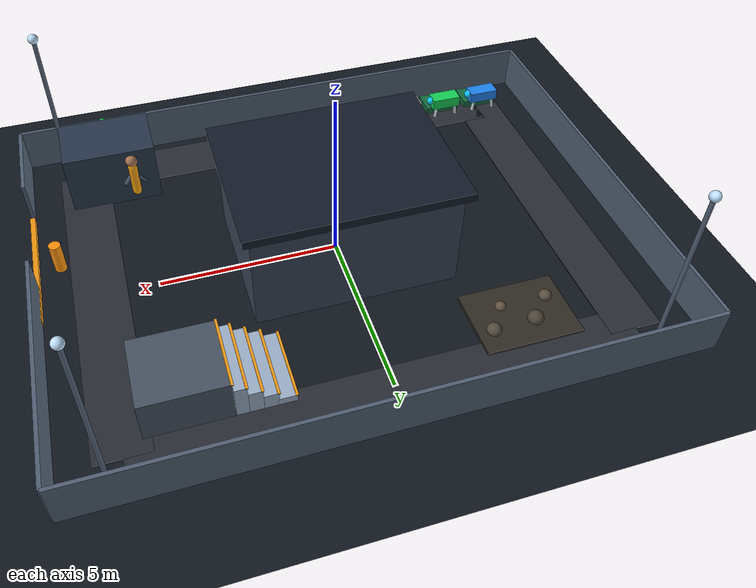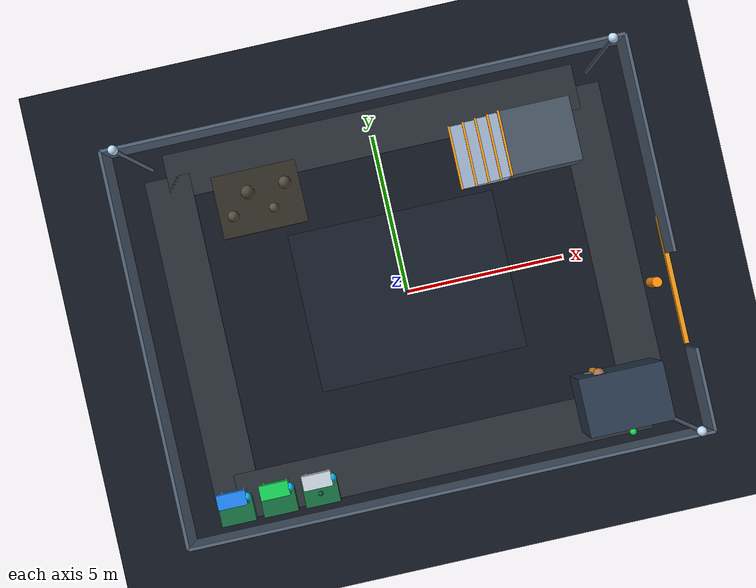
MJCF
<mujoco model="quadruped_night_security_v2">
  <compiler angle="degree"/>
  <option timestep="0.01" gravity="0 0 -9.81"/>
  <visual>
    <global azimuth="128" elevation="-31" offwidth="960" offheight="540"/>
    <headlight ambient="0.20 0.22 0.28" diffuse="0.70 0.74 0.82" specular="0.30 0.30 0.35"/>
    <rgba haze="0.02 0.04 0.08 1"/>
  </visual>
  <asset>
    <texture name="ground_tex" type="2d" builtin="checker" rgb1="0.055 0.07 0.10" rgb2="0.085 0.11 0.15" width="256" height="256"/>
    <material name="ground" texture="ground_tex" texrepeat="14 10" reflectance="0.08"/>
    <material name="building" rgba="0.22 0.27 0.34 1"/>
    <material name="roof" rgba="0.08 0.11 0.16 1"/>
    <material name="glass" rgba="0.08 0.45 0.62 0.78" emission="0.12"/>
    <material name="pavement" rgba="0.16 0.18 0.21 1"/>
    <material name="boundary" rgba="0.95 0.60 0.08 1" emission="0.10"/>
    <material name="steel" rgba="0.32 0.38 0.46 1"/>
    <material name="quad" rgba="0.78 0.82 0.86 1"/>
    <material name="quad_blue" rgba="0.12 0.52 0.95 1"/>
    <material name="quad_green" rgba="0.08 0.82 0.34 1"/>
    <material name="step" rgba="0.62 0.70 0.80 1"/>
    <material name="sensor" rgba="0.05 0.75 0.95 1" emission="0.45"/>
    <material name="dock" rgba="0.08 0.42 0.24 1"/>
    <material name="vest" rgba="0.95 0.62 0.05 1"/>
  </asset>
  <worldbody>
    <light pos="0 -2 12" dir="0 0 -1" diffuse="0.65 0.70 0.82"/>
    <light pos="-7 -6 5" dir="0.4 0.4 -1" diffuse="0.35 0.45 0.62"/>
    <light pos="7 5 5" dir="-0.4 -0.4 -1" diffuse="0.35 0.45 0.62"/>
    <geom type="plane" size="14 10 0.1" material="ground"/>
    <camera name="overview" pos="-15 -16 11" xyaxes="0.73 -0.68 0 0.38 0.41 0.83"/>
    <camera name="gate" pos="12 -9 5" xyaxes="0.70 0.71 0 -0.30 0.30 0.91"/>
    <camera name="terrain" pos="-8 8 4.5" xyaxes="-0.70 -0.71 0 0.32 -0.31 0.89"/>
    <camera name="dock" pos="-10 -10 4.5" xyaxes="0.72 -0.70 0 0.28 0.29 0.92"/>
    <camera name="stair_close" pos="3.6 7.8 5.0" xyaxes="-0.998783 0.049323 0 -0.036270 -0.734458 0.677684"/>
    <camera name="north_perimeter" pos="-11.5 9.5 6.8" xyaxes="-0.64 -0.77 0 0.36 -0.30 0.88"/>

    <!-- Warehouse and guard station -->
    <geom type="box" pos="0 0 1.5" size="2.8 2.1 1.5" material="building"/>
    <geom type="box" pos="0 0 3.08" size="3.0 2.3 0.12" material="roof"/>
    <geom type="box" pos="-1.6 -2.12 1.5" size="0.75 0.03 0.78" material="glass" contype="0" conaffinity="0"/>
    <geom type="box" pos="0 -2.12 1.5" size="0.55 0.03 0.78" material="glass" contype="0" conaffinity="0"/>
    <geom type="box" pos="1.6 -2.12 1.5" size="0.75 0.03 0.78" material="glass" contype="0" conaffinity="0"/>
    <geom type="box" pos="5.7 -4.6 0.9" size="1.3 0.9 0.9" rgba="0.16 0.22 0.30 1"/>
    <geom type="box" pos="5.7 -5.51 0.95" size="0.80 0.03 0.45" material="glass" contype="0" conaffinity="0"/>
    <geom type="box" pos="4.65 -4.62 0.95" size="0.03 0.45 0.45" material="glass" contype="0" conaffinity="0"/>
    <geom name="soc_indicator" type="sphere" pos="5.7 -5.60 1.65" size="0.11" rgba="0.08 0.85 0.30 1" contype="0" conaffinity="0"/>

    <!-- Human responder -->
    <body name="human_responder" pos="5.1 -3.7 0">
      <geom type="capsule" fromto="0 0 0.35 0 0 1.25" size="0.13" material="vest"/>
      <geom type="sphere" pos="0 0 1.48" size="0.18" rgba="0.64 0.45 0.32 1"/>
      <geom type="capsule" fromto="0 0 1.05 -0.28 0 0.68" size="0.055" material="steel"/>
      <geom type="capsule" fromto="0 0 1.05 0.28 0 0.68" size="0.055" material="steel"/>
    </body>

    <!-- Perimeter fence and an intentionally open gate anomaly. No abstract route lines are shown. -->
    <geom type="box" pos="0 6.2 0.65" size="8.2 0.05 0.65" material="steel"/>
    <geom type="box" pos="0 -6.2 0.65" size="8.2 0.05 0.65" material="steel"/>
    <geom type="box" pos="-8.2 0 0.65" size="0.05 6.2 0.65" material="steel"/>
    <geom type="box" pos="8.2 2.8 0.65" size="0.05 3.4 0.65" material="steel"/>
    <geom type="box" pos="8.2 -4.9 0.65" size="0.05 1.3 0.65" material="steel"/>
    <geom type="box" pos="8.2 -1.45 0.10" size="0.07 2.05 0.10" material="boundary" contype="0" conaffinity="0"/>
    <geom name="event_beacon" type="cylinder" pos="7.55 -1.40 0.45" size="0.16 0.45" rgba="1.0 0.58 0.05 1" contype="0" conaffinity="0"/>

    <geom type="box" pos="0 -5.15 0.015" size="6.6 0.72 0.015" material="pavement"/>
    <geom type="box" pos="6.6 0 0.015" size="0.72 5.15 0.015" material="pavement"/>
    <geom type="box" pos="0 5.15 0.015" size="6.6 0.72 0.015" material="pavement"/>
    <geom type="box" pos="-6.6 0 0.015" size="0.72 5.15 0.015" material="pavement"/>

    <!-- Raised platform, stairs, and rough ground -->
    <geom name="loading_platform" type="box" pos="5.0 3.75 0.62" size="1.10 1.0 0.62" rgba="0.28 0.33 0.39 1"/>
    <geom name="security_step_1" type="box" pos="2.62 3.75 0.12" size="0.24 1.0 0.12" material="step"/>
    <geom name="security_step_2" type="box" pos="3.02 3.75 0.24" size="0.20 1.0 0.24" material="step"/>
    <geom name="security_step_3" type="box" pos="3.38 3.75 0.36" size="0.18 1.0 0.36" material="step"/>
    <geom name="security_step_4" type="box" pos="3.72 3.75 0.49" size="0.16 1.0 0.49" material="step"/>
    <geom type="box" pos="2.39 3.75 0.252" size="0.035 1.02 0.012" material="boundary" contype="0" conaffinity="0"/>
    <geom type="box" pos="2.83 3.75 0.492" size="0.035 1.02 0.012" material="boundary" contype="0" conaffinity="0"/>
    <geom type="box" pos="3.21 3.75 0.732" size="0.035 1.02 0.012" material="boundary" contype="0" conaffinity="0"/>
    <geom type="box" pos="3.57 3.75 0.992" size="0.035 1.02 0.012" material="boundary" contype="0" conaffinity="0"/>
    <geom type="box" pos="3.89 3.75 1.252" size="0.035 1.02 0.012" material="boundary" contype="0" conaffinity="0"/>
    <light pos="4.0 1.8 6.0" dir="-0.1 0.35 -1" diffuse="0.90 0.90 0.82"/>
    <geom type="box" pos="-3.9 3.85 0.05" size="1.35 1.0 0.05" rgba="0.19 0.17 0.14 1"/>
    <geom type="sphere" pos="-4.8 3.5 0.12" size="0.18" rgba="0.34 0.30 0.24 1"/>
    <geom type="sphere" pos="-4.2 4.15 0.14" size="0.22" rgba="0.30 0.27 0.22 1"/>
    <geom type="sphere" pos="-3.5 3.5 0.10" size="0.15" rgba="0.38 0.33 0.25 1"/>
    <geom type="sphere" pos="-3.0 4.2 0.13" size="0.20" rgba="0.32 0.29 0.24 1"/>

    <!-- Charging docks -->
    <geom name="dock_a" type="box" pos="-6.7 -5.55 0.12" size="0.55 0.38 0.12" material="dock"/>
    <geom name="dock_b" type="box" pos="-5.35 -5.55 0.12" size="0.55 0.38 0.12" material="dock"/>
    <geom name="dock_c" type="box" pos="-4.0 -5.55 0.12" size="0.55 0.38 0.12" material="dock"/>
    <geom name="dock_c_light" type="sphere" pos="-4.0 -5.55 0.36" size="0.08" rgba="0.08 0.35 0.18 1" contype="0" conaffinity="0"/>

    <body pos="-7 5.5 0"><geom type="cylinder" size="0.06 2.4" pos="0 0 2.4" material="steel"/><geom type="sphere" size="0.14" pos="0 0 4.8" rgba="0.75 0.88 1 1"/></body>
    <body pos="7 5.5 0"><geom type="cylinder" size="0.06 2.4" pos="0 0 2.4" material="steel"/><geom type="sphere" size="0.14" pos="0 0 4.8" rgba="0.75 0.88 1 1"/></body>
    <body pos="7 -5.5 0"><geom type="cylinder" size="0.06 2.4" pos="0 0 2.4" material="steel"/><geom type="sphere" size="0.14" pos="0 0 4.8" rgba="0.75 0.88 1 1"/></body>

    <!-- Three operations-focused quadruped visual agents -->
    <body name="quadruped_01" mocap="true" pos="-6.7 -5.1 0">
      <geom type="box" pos="0 0 0.55" size="0.46 0.23 0.17" material="quad_blue" contype="0" conaffinity="0"/>
      <geom name="sensor_01" type="sphere" pos="0.48 0 0.60" size="0.13" material="sensor" contype="0" conaffinity="0"/>
      <geom type="capsule" fromto="-0.31 -0.17 0.47 -0.36 -0.18 0.08" size="0.05" material="quad" contype="0" conaffinity="0"/>
      <geom type="capsule" fromto="-0.31 0.17 0.47 -0.36 0.18 0.08" size="0.05" material="quad" contype="0" conaffinity="0"/>
      <geom type="capsule" fromto="0.31 -0.17 0.47 0.36 -0.18 0.08" size="0.05" material="quad" contype="0" conaffinity="0"/>
      <geom type="capsule" fromto="0.31 0.17 0.47 0.36 0.18 0.08" size="0.05" material="quad" contype="0" conaffinity="0"/>
    </body>
    <body name="quadruped_02" mocap="true" pos="-5.35 -5.1 0">
      <geom type="box" pos="0 0 0.55" size="0.46 0.23 0.17" material="quad_green" contype="0" conaffinity="0"/>
      <geom name="sensor_02" type="sphere" pos="0.48 0 0.60" size="0.13" material="sensor" contype="0" conaffinity="0"/>
      <geom type="capsule" fromto="-0.31 -0.17 0.47 -0.36 -0.18 0.08" size="0.05" material="quad" contype="0" conaffinity="0"/>
      <geom type="capsule" fromto="-0.31 0.17 0.47 -0.36 0.18 0.08" size="0.05" material="quad" contype="0" conaffinity="0"/>
      <geom type="capsule" fromto="0.31 -0.17 0.47 0.36 -0.18 0.08" size="0.05" material="quad" contype="0" conaffinity="0"/>
      <geom type="capsule" fromto="0.31 0.17 0.47 0.36 0.18 0.08" size="0.05" material="quad" contype="0" conaffinity="0"/>
    </body>
    <body name="quadruped_03" mocap="true" pos="-4.0 -5.1 0">
      <geom type="box" pos="0 0 0.55" size="0.46 0.23 0.17" material="quad" contype="0" conaffinity="0"/>
      <geom name="sensor_03" type="sphere" pos="0.48 0 0.60" size="0.13" material="sensor" contype="0" conaffinity="0"/>
      <geom type="capsule" fromto="-0.31 -0.17 0.47 -0.36 -0.18 0.08" size="0.05" material="quad" contype="0" conaffinity="0"/>
      <geom type="capsule" fromto="-0.31 0.17 0.47 -0.36 0.18 0.08" size="0.05" material="quad" contype="0" conaffinity="0"/>
      <geom type="capsule" fromto="0.31 -0.17 0.47 0.36 -0.18 0.08" size="0.05" material="quad" contype="0" conaffinity="0"/>
      <geom type="capsule" fromto="0.31 0.17 0.47 0.36 0.18 0.08" size="0.05" material="quad" contype="0" conaffinity="0"/>
    </body>
  </worldbody>
</mujoco>
